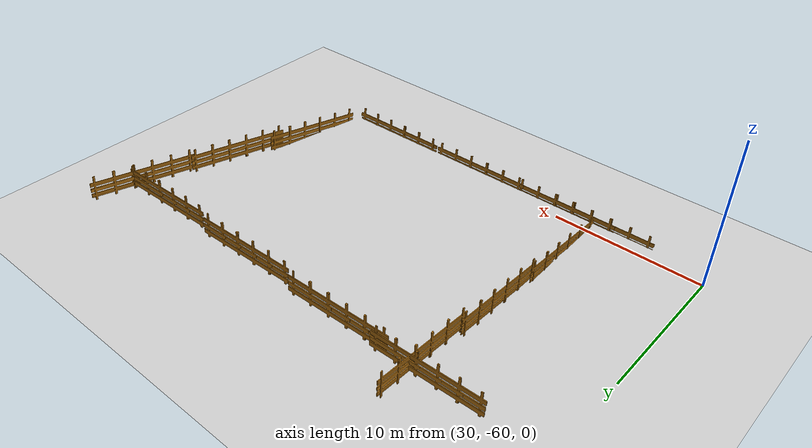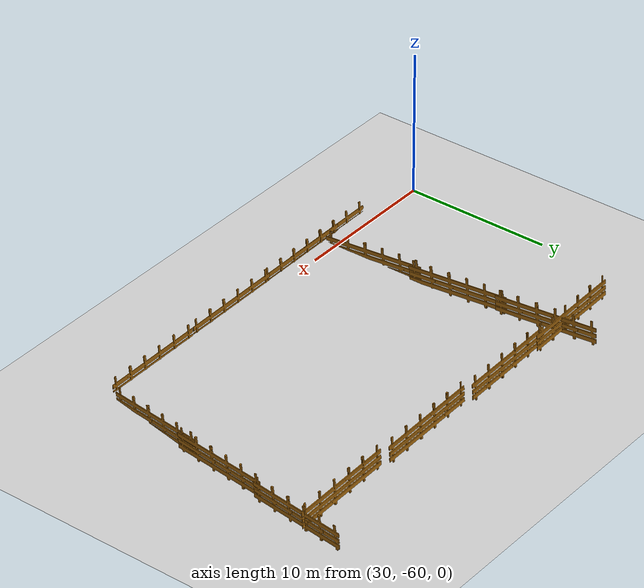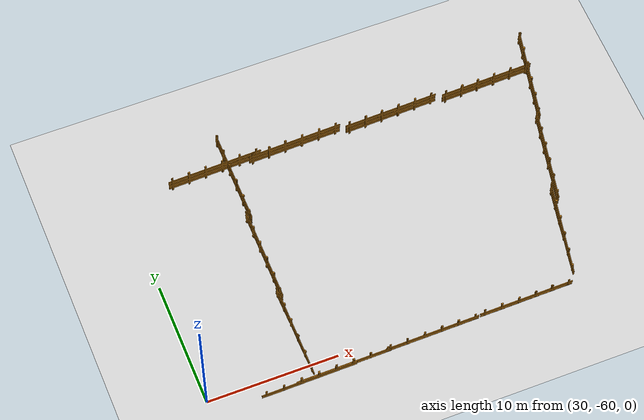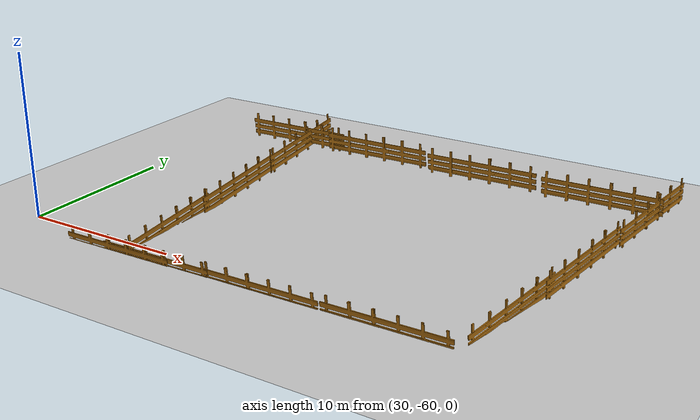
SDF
<sdf version="1.6">
 <world name="default">
  <light name="sun" type="directional">
   <pose>0 0 10 0 -0 0</pose>
   <diffuse>0.8 0.8 0.8 1</diffuse>
   <specular>0.2 0.2 0.2 1</specular>
   <attenuation>
    <range>1000</range>
    <constant>0.9</constant>
    <linear>0.01</linear>
    <quadratic>0.001</quadratic>
   </attenuation>
   <direction>-0.5 0.1 -0.9</direction>
  </light>
  <physics name="default_physics" default="0" type="ode">
   <real_time_update_rate>200</real_time_update_rate>
   <real_time_factor>1</real_time_factor>
   <max_step_size>0.005</max_step_size>
  </physics>
  <gravity>0 0 -9.8</gravity>
  <magnetic_field>6e-06 2.3e-05 -4.2e-05</magnetic_field>
  <atmosphere type="adiabatic"/>
  <scene><sky><clouds><speed>12</speed></clouds></sky><shadows>1</shadows></scene>
  <spherical_coordinates>
   <surface_model>EARTH_WGS84</surface_model>
   <latitude_deg>0</latitude_deg>
   <longitude_deg>0</longitude_deg>
   <elevation>0</elevation>
   <heading_deg>0</heading_deg>
  </spherical_coordinates>
  <model name="fence_5">
   <static>1</static>
   <link name="link">
    <inertial>
     <mass>100</mass>
     <inertia><ixx>192.33</ixx><ixy>0</ixy><ixz>0</ixz><iyy>12.33</iyy><iyz>0</iyz><izz>204</izz></inertia>
    </inertial>
    <collision name="collision">
     <geometry><mesh><uri>model://fence_5/meshes/fence_5_brown.dae</uri><scale>1 1 1</scale></mesh></geometry>
    </collision>
    <visual name="visual">
     <geometry><mesh><uri>model://fence_5/meshes/fence_5_brown.dae</uri><scale>1 1 1</scale></mesh></geometry>
    </visual>
   </link>
   <pose>38.8478 -56.94425 0 -1e-06 0.085 -1.557</pose>
  </model>
  <model name="fence_5_clone">
   <static>1</static>
   <link name="link">
    <inertial>
     <mass>100</mass>
     <inertia><ixx>192.33</ixx><ixy>0</ixy><ixz>0</ixz><iyy>12.33</iyy><iyz>0</iyz><izz>204</izz></inertia>
    </inertial>
    <collision name="collision">
     <geometry><mesh><uri>model://fence_5/meshes/fence_5_brown.dae</uri><scale>1 1 1</scale></mesh></geometry>
    </collision>
    <visual name="visual">
     <geometry><mesh><uri>model://fence_5/meshes/fence_5_brown.dae</uri><scale>1 1 1</scale></mesh></geometry>
    </visual>
   </link>
   <pose>38.965 -50.429934 0.575493 -1e-06 0.085 -1.557</pose>
  </model>
  <model name="fence_5_clone_0">
   <static>1</static>
   <link name="link">
    <inertial>
     <mass>100</mass>
     <inertia><ixx>192.33</ixx><ixy>0</ixy><ixz>0</ixz><iyy>12.33</iyy><iyz>0</iyz><izz>204</izz></inertia>
    </inertial>
    <collision name="collision">
     <geometry><mesh><uri>model://fence_5/meshes/fence_5_brown.dae</uri><scale>1 1 1</scale></mesh></geometry>
    </collision>
    <visual name="visual">
     <geometry><mesh><uri>model://fence_5/meshes/fence_5_brown.dae</uri><scale>1 1 1</scale></mesh></geometry>
    </visual>
   </link>
   <pose>39.1091 -43.83913 1.25236 -1e-06 0.085 -1.557</pose>
  </model>
  <model name="fence_5_clone_0_clone">
   <static>1</static>
   <link name="link">
    <inertial>
     <mass>100</mass>
     <inertia><ixx>192.33</ixx><ixy>0</ixy><ixz>0</ixz><iyy>12.33</iyy><iyz>0</iyz><izz>204</izz></inertia>
    </inertial>
    <collision name="collision">
     <geometry><mesh><uri>model://fence_5/meshes/fence_5_brown.dae</uri><scale>1 1 1</scale></mesh></geometry>
    </collision>
    <visual name="visual">
     <geometry><mesh><uri>model://fence_5/meshes/fence_5_brown.dae</uri><scale>1 1 1</scale></mesh></geometry>
    </visual>
   </link>
   <pose>62.9618 -43.91925 1.31373 -0.017199 0.083246 -1.76097</pose>
  </model>
  <model name="fence_5_clone_0_clone_0">
   <static>1</static>
   <link name="link">
    <inertial>
     <mass>100</mass>
     <inertia><ixx>192.33</ixx><ixy>0</ixy><ixz>0</ixz><iyy>12.33</iyy><iyz>0</iyz><izz>204</izz></inertia>
    </inertial>
    <collision name="collision">
     <geometry><mesh><uri>model://fence_5/meshes/fence_5_brown.dae</uri><scale>1 1 1</scale></mesh></geometry>
    </collision>
    <visual name="visual">
     <geometry><mesh><uri>model://fence_5/meshes/fence_5_brown.dae</uri><scale>1 1 1</scale></mesh></geometry>
    </visual>
   </link>
   <pose>61.4746 -50.686132 0.744791 -0.016729 0.083341 -1.75532</pose>
  </model>
  <model name="fence_5_clone_0_clone_1">
   <static>1</static>
   <link name="link">
    <inertial>
     <mass>100</mass>
     <inertia><ixx>192.33</ixx><ixy>0</ixy><ixz>0</ixz><iyy>12.33</iyy><iyz>0</iyz><izz>204</izz></inertia>
    </inertial>
    <collision name="collision">
     <geometry><mesh><uri>model://fence_5/meshes/fence_5_brown.dae</uri><scale>1 1 1</scale></mesh></geometry>
    </collision>
    <visual name="visual">
     <geometry><mesh><uri>model://fence_5/meshes/fence_5_brown.dae</uri><scale>1 1 1</scale></mesh></geometry>
    </visual>
   </link>
   <pose>60.0866 -56.57871 0.119798 -0.016842 0.083319 -1.75668</pose>
  </model>
  <model name="fence_5_clone_0_clone_1_clone">
   <static>1</static>
   <link name="link">
    <inertial>
     <mass>100</mass>
     <inertia><ixx>192.33</ixx><ixy>0</ixy><ixz>0</ixz><iyy>12.33</iyy><iyz>0</iyz><izz>204</izz></inertia>
    </inertial>
    <collision name="collision">
     <geometry><mesh><uri>model://fence_5/meshes/fence_5_brown.dae</uri><scale>1 1 1</scale></mesh></geometry>
    </collision>
    <visual name="visual">
     <geometry><mesh><uri>model://fence_5/meshes/fence_5_brown.dae</uri><scale>1 1 1</scale></mesh></geometry>
    </visual>
   </link>
   <pose>54.49655 -61.869 -0.313547 -0.085 -0.000309 -3.13141</pose>
  </model>
  <model name="fence_5_clone_0_clone_1_clone_clone">
   <static>1</static>
   <link name="link">
    <inertial>
     <mass>100</mass>
     <inertia><ixx>192.33</ixx><ixy>0</ixy><ixz>0</ixz><iyy>12.33</iyy><iyz>0</iyz><izz>204</izz></inertia>
    </inertial>
    <collision name="collision">
     <geometry><mesh><uri>model://fence_5/meshes/fence_5_brown.dae</uri><scale>1 1 1</scale></mesh></geometry>
    </collision>
    <visual name="visual">
     <geometry><mesh><uri>model://fence_5/meshes/fence_5_brown.dae</uri><scale>1 1 1</scale></mesh></geometry>
    </visual>
   </link>
   <pose>47.10307 -61.9663 -0.335978 -0.085 -0.000309 -3.13141</pose>
  </model>
  <model name="fence_5_clone_0_clone_1_clone_clone_0">
   <static>1</static>
   <link name="link">
    <inertial>
     <mass>100</mass>
     <inertia><ixx>192.33</ixx><ixy>0</ixy><ixz>0</ixz><iyy>12.33</iyy><iyz>0</iyz><izz>204</izz></inertia>
    </inertial>
    <collision name="collision">
     <geometry><mesh><uri>model://fence_5/meshes/fence_5_brown.dae</uri><scale>1 1 1</scale></mesh></geometry>
    </collision>
    <visual name="visual">
     <geometry><mesh><uri>model://fence_5/meshes/fence_5_brown.dae</uri><scale>1 1 1</scale></mesh></geometry>
    </visual>
   </link>
   <pose>40.26831 -62.0549 -0.364819 -0.085 -0.000309 -3.13141</pose>
  </model>
  <model name="fence_5_clone_0_clone_1_clone_clone_1">
   <static>1</static>
   <link name="link">
    <inertial>
     <mass>100</mass>
     <inertia><ixx>192.33</ixx><ixy>0</ixy><ixz>0</ixz><iyy>12.33</iyy><iyz>0</iyz><izz>204</izz></inertia>
    </inertial>
    <collision name="collision">
     <geometry><mesh><uri>model://fence_5/meshes/fence_5_brown.dae</uri><scale>1 1 1</scale></mesh></geometry>
    </collision>
    <visual name="visual">
     <geometry><mesh><uri>model://fence_5/meshes/fence_5_brown.dae</uri><scale>1 1 1</scale></mesh></geometry>
    </visual>
   </link>
   <pose>37.5903 -62.1363 -0.398744 -0.085 -0.000309 -3.13141</pose>
  </model>
  <model name="fence_5_clone_0_clone_clone">
   <static>1</static>
   <link name="link">
    <inertial>
     <mass>100</mass>
     <inertia><ixx>192.33</ixx><ixy>0</ixy><ixz>0</ixz><iyy>12.33</iyy><iyz>0</iyz><izz>204</izz></inertia>
    </inertial>
    <collision name="collision">
     <geometry><mesh><uri>model://fence_5/meshes/fence_5_brown.dae</uri><scale>1 1 1</scale></mesh></geometry>
    </collision>
    <visual name="visual">
     <geometry><mesh><uri>model://fence_5/meshes/fence_5_brown.dae</uri><scale>1 1 1</scale></mesh></geometry>
    </visual>
   </link>
   <pose>58.3681 -42.2106 1.56424 0.084997 -0.00067 0.02168</pose>
  </model>
  <model name="fence_5_clone_0_clone_clone_clone">
   <static>1</static>
   <link name="link">
    <inertial>
     <mass>100</mass>
     <inertia><ixx>192.33</ixx><ixy>0</ixy><ixz>0</ixz><iyy>12.33</iyy><iyz>0</iyz><izz>204</izz></inertia>
    </inertial>
    <collision name="collision">
     <geometry><mesh><uri>model://fence_5/meshes/fence_5_brown.dae</uri><scale>1 1 1</scale></mesh></geometry>
    </collision>
    <visual name="visual">
     <geometry><mesh><uri>model://fence_5/meshes/fence_5_brown.dae</uri><scale>1 1 1</scale></mesh></geometry>
    </visual>
   </link>
   <pose>50.64917 -42.0985 1.56424 0.084997 -0.00067 0.02168</pose>
  </model>
  <model name="fence_5_clone_0_clone_clone_clone_0">
   <static>1</static>
   <link name="link">
    <inertial>
     <mass>100</mass>
     <inertia><ixx>192.33</ixx><ixy>0</ixy><ixz>0</ixz><iyy>12.33</iyy><iyz>0</iyz><izz>204</izz></inertia>
    </inertial>
    <collision name="collision">
     <geometry><mesh><uri>model://fence_5/meshes/fence_5_brown.dae</uri><scale>1 1 1</scale></mesh></geometry>
    </collision>
    <visual name="visual">
     <geometry><mesh><uri>model://fence_5/meshes/fence_5_brown.dae</uri><scale>1 1 1</scale></mesh></geometry>
    </visual>
   </link>
   <pose>43.01987 -41.9301 1.56424 0.084997 -0.00067 0.02168</pose>
  </model>
  <model name="fence_5_clone_0_clone_clone_clone_1">
   <static>1</static>
   <link name="link">
    <inertial>
     <mass>100</mass>
     <inertia><ixx>192.33</ixx><ixy>0</ixy><ixz>0</ixz><iyy>12.33</iyy><iyz>0</iyz><izz>204</izz></inertia>
    </inertial>
    <collision name="collision">
     <geometry><mesh><uri>model://fence_5/meshes/fence_5_brown.dae</uri><scale>1 1 1</scale></mesh></geometry>
    </collision>
    <visual name="visual">
     <geometry><mesh><uri>model://fence_5/meshes/fence_5_brown.dae</uri><scale>1 1 1</scale></mesh></geometry>
    </visual>
   </link>
   <pose>36.76534 -41.8399 1.56424 0.084997 -0.00067 0.02168</pose>
  </model>
  <include><uri>model://grass_ground_plane</uri></include>
 </world>
</sdf>

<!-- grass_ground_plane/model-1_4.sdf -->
<sdf version="1.4">
<model name="grass_ground_plane">
  <static>true</static>
    <link name="link">
      <collision name="collision">
        <geometry>
          <plane>
            <normal>0 0 1</normal>
            <size>200 200</size>
          </plane>
        </geometry>
        <surface>
          <friction>
            <ode>
              <mu>0.5</mu>
              <mu2>0.5</mu2>
            </ode>
          </friction>
        </surface>
      </collision>
      <visual name="visual">
        <cast_shadows>false</cast_shadows>
        <geometry>
          <plane>
            <normal>0 0 1</normal>
            <size>200 200</size>
          </plane>
        </geometry>
        <material>
          <script>
            <uri>model://grass_ground_plane/materials/scripts/grass_ground_plane.material</uri>
            <name>GrassGroundPlane/Image</name>
          </script>
        </material>
      </visual>
    </link>
  </model>
</sdf>
